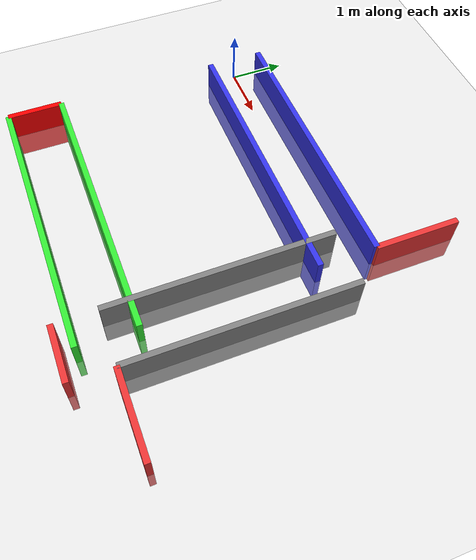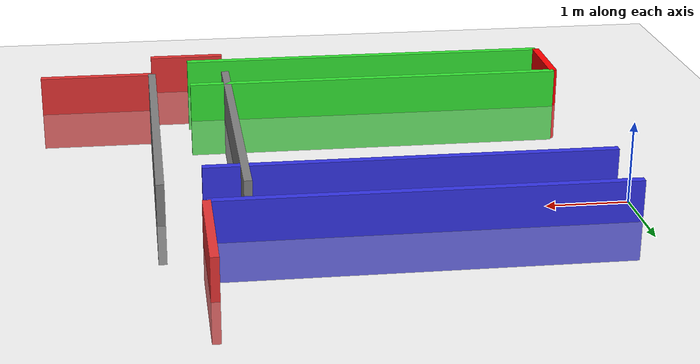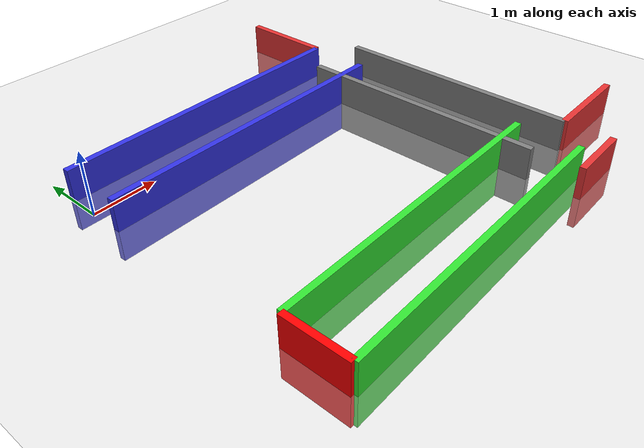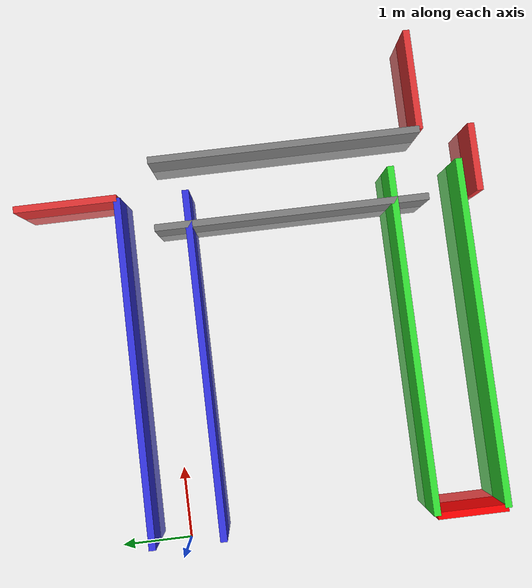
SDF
<?xml version="1.0"?>
<sdf version="1.6">
  <world name="simple_pipe_test">

    <physics type="ode">
      <max_step_size>0.001</max_step_size>
      <real_time_factor>1</real_time_factor>
      <real_time_update_rate>1000</real_time_update_rate>
    </physics>

    <include>
      <uri>model://sun</uri>
    </include>

    <include>
      <uri>model://ground_plane</uri>
    </include>

    <!-- ===== CORRIDOR 1: START TO J1 (Horizontal East) ===== -->

    <!-- North wall of corridor 1 -->
    <model name="c1_north">
      <static>true</static>
      <pose>2.5 0.5 0 0 0 0</pose>
      <link name="link">
        <collision name="collision">
          <geometry>
            <box>
              <size>5.0 0.1 1.0</size>
            </box>
          </geometry>
        </collision>
        <visual name="visual">
          <geometry>
            <box>
              <size>5.0 0.1 1.0</size>
            </box>
          </geometry>
          <material>
            <ambient>0.2 0.2 0.9 1</ambient>
            <diffuse>0.2 0.2 0.9 1</diffuse>
          </material>
        </visual>
      </link>
    </model>

    <!-- South wall of corridor 1 -->
    <model name="c1_south">
      <static>true</static>
      <pose>2.5 -0.5 0 0 0 0</pose>
      <link name="link">
        <collision name="collision">
          <geometry>
            <box>
              <size>5.0 0.1 1.0</size>
            </box>
          </geometry>
        </collision>
        <visual name="visual">
          <geometry>
            <box>
              <size>5.0 0.1 1.0</size>
            </box>
          </geometry>
          <material>
            <ambient>0.2 0.2 0.9 1</ambient>
            <diffuse>0.2 0.2 0.9 1</diffuse>
          </material>
        </visual>
      </link>
    </model>

    <!-- ===== JUNCTION 1: T-RIGHT at (5, 0) ===== -->

    <!-- Block north (left turn blocked) -->
    <model name="j1_block">
      <static>true</static>
      <pose>5.0 1.25 0 0 0 0</pose>
      <link name="link">
        <collision name="collision">
          <geometry>
            <box>
              <size>0.1 1.5 1.0</size>
            </box>
          </geometry>
        </collision>
        <visual name="visual">
          <geometry>
            <box>
              <size>0.1 1.5 1.0</size>
            </box>
          </geometry>
          <material>
            <ambient>0.9 0.2 0.2 1</ambient>
            <diffuse>0.9 0.2 0.2 1</diffuse>
          </material>
        </visual>
      </link>
    </model>

    <!-- ===== CORRIDOR 2: J1 TO J2 (Vertical South) ===== -->

    <!-- West wall of corridor 2 -->
    <model name="c2_west">
      <static>true</static>
      <pose>4.5 -2.0 0 0 0 0</pose>
      <link name="link">
        <collision name="collision">
          <geometry>
            <box>
              <size>0.1 4.0 1.0</size>
            </box>
          </geometry>
        </collision>
        <visual name="visual">
          <geometry>
            <box>
              <size>0.1 4.0 1.0</size>
            </box>
          </geometry>
          <material>
            <ambient>0.5 0.5 0.5 1</ambient>
            <diffuse>0.5 0.5 0.5 1</diffuse>
          </material>
        </visual>
      </link>
    </model>

    <!-- East wall of corridor 2 -->
    <model name="c2_east">
      <static>true</static>
      <pose>5.5 -2.0 0 0 0 0</pose>
      <link name="link">
        <collision name="collision">
          <geometry>
            <box>
              <size>0.1 4.0 1.0</size>
            </box>
          </geometry>
        </collision>
        <visual name="visual">
          <geometry>
            <box>
              <size>0.1 4.0 1.0</size>
            </box>
          </geometry>
          <material>
            <ambient>0.5 0.5 0.5 1</ambient>
            <diffuse>0.5 0.5 0.5 1</diffuse>
          </material>
        </visual>
      </link>
    </model>

    <!-- ===== JUNCTION 2: T-LEFT at (5, -4) ===== -->

    <!-- Block east (right turn blocked) -->
    <model name="j2_block_east">
      <static>true</static>
      <pose>6.25 -4.0 0 0 0 0</pose>
      <link name="link">
        <collision name="collision">
          <geometry>
            <box>
              <size>1.5 0.1 1.0</size>
            </box>
          </geometry>
        </collision>
        <visual name="visual">
          <geometry>
            <box>
              <size>1.5 0.1 1.0</size>
            </box>
          </geometry>
          <material>
            <ambient>0.9 0.2 0.2 1</ambient>
            <diffuse>0.9 0.2 0.2 1</diffuse>
          </material>
        </visual>
      </link>
    </model>

    <!-- Block south (straight blocked) -->
    <model name="j2_block_south">
      <static>true</static>
      <pose>5.0 -4.75 0 0 0 0</pose>
      <link name="link">
        <collision name="collision">
          <geometry>
            <box>
              <size>1.0 0.1 1.0</size>
            </box>
          </geometry>
        </collision>
        <visual name="visual">
          <geometry>
            <box>
              <size>1.0 0.1 1.0</size>
            </box>
          </geometry>
          <material>
            <ambient>0.9 0.2 0.2 1</ambient>
            <diffuse>0.9 0.2 0.2 1</diffuse>
          </material>
        </visual>
      </link>
    </model>

    <!-- ===== CORRIDOR 3: J2 TO TARGET (Horizontal West) ===== -->

    <!-- North wall of corridor 3 -->
    <model name="c3_north">
      <static>true</static>
      <pose>2.5 -3.5 0 0 0 0</pose>
      <link name="link">
        <collision name="collision">
          <geometry>
            <box>
              <size>5.0 0.1 1.0</size>
            </box>
          </geometry>
        </collision>
        <visual name="visual">
          <geometry>
            <box>
              <size>5.0 0.1 1.0</size>
            </box>
          </geometry>
          <material>
            <ambient>0.2 0.9 0.2 1</ambient>
            <diffuse>0.2 0.9 0.2 1</diffuse>
          </material>
        </visual>
      </link>
    </model>

    <!-- South wall of corridor 3 -->
    <model name="c3_south">
      <static>true</static>
      <pose>2.5 -4.5 0 0 0 0</pose>
      <link name="link">
        <collision name="collision">
          <geometry>
            <box>
              <size>5.0 0.1 1.0</size>
            </box>
          </geometry>
        </collision>
        <visual name="visual">
          <geometry>
            <box>
              <size>5.0 0.1 1.0</size>
            </box>
          </geometry>
          <material>
            <ambient>0.2 0.9 0.2 1</ambient>
            <diffuse>0.2 0.9 0.2 1</diffuse>
          </material>
        </visual>
      </link>
    </model>

    <!-- ===== TARGET END WALL ===== -->
    <model name="target_wall">
      <static>true</static>
      <pose>0.0 -4.0 0 0 0 0</pose>
      <link name="link">
        <collision name="collision">
          <geometry>
            <box>
              <size>0.1 1.0 1.0</size>
            </box>
          </geometry>
        </collision>
        <visual name="visual">
          <geometry>
            <box>
              <size>0.1 1.0 1.0</size>
            </box>
          </geometry>
          <material>
            <ambient>1.0 0.0 0.0 1</ambient>
            <diffuse>1.0 0.0 0.0 1</diffuse>
          </material>
        </visual>
      </link>
    </model>

  </world>
</sdf>
